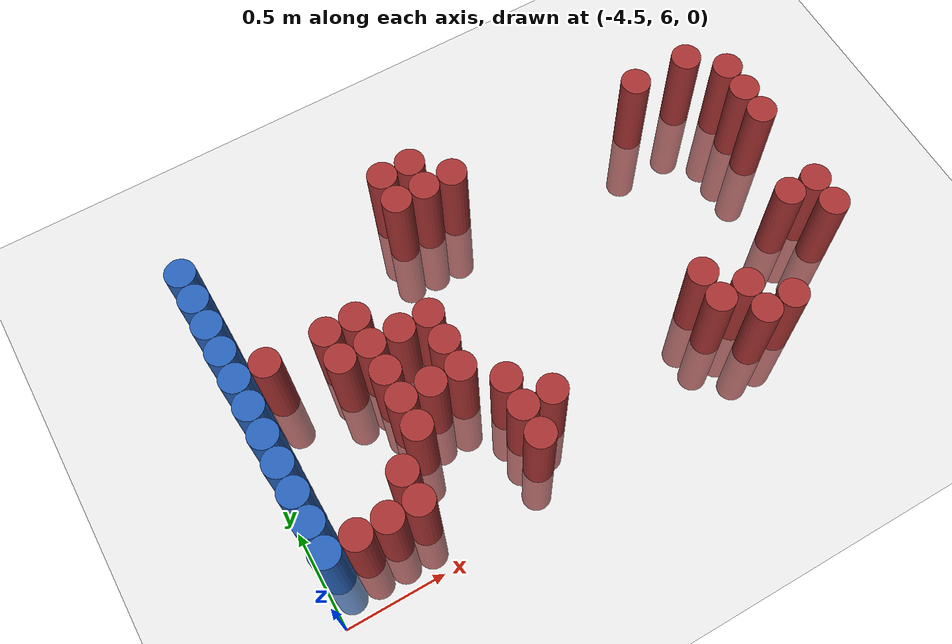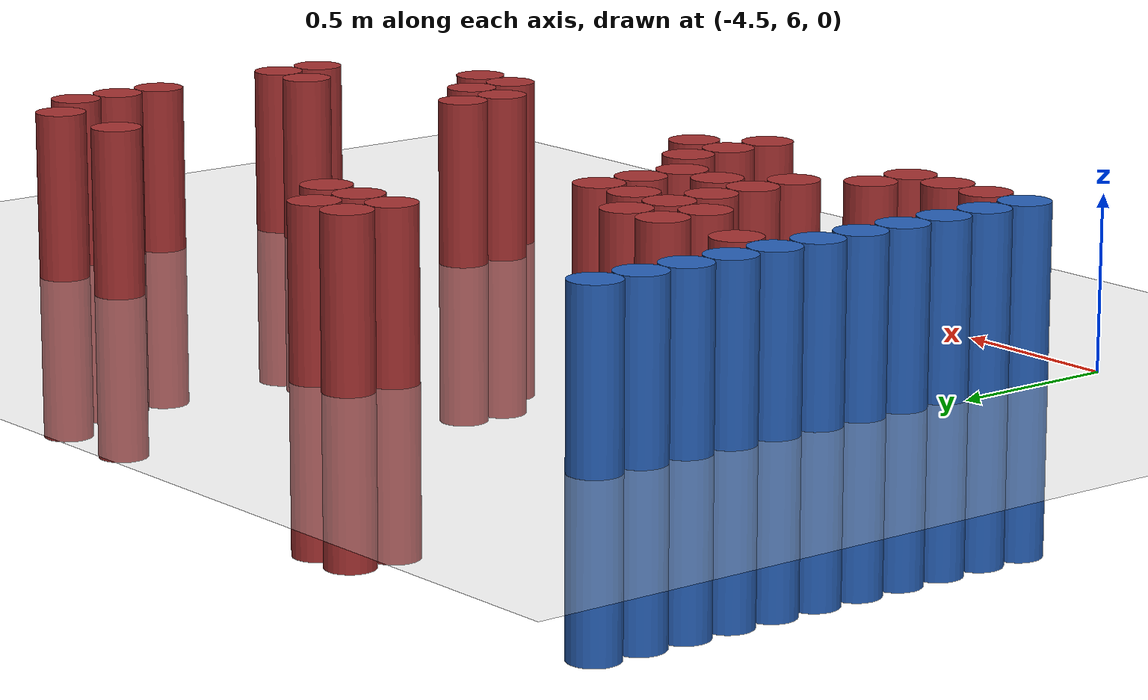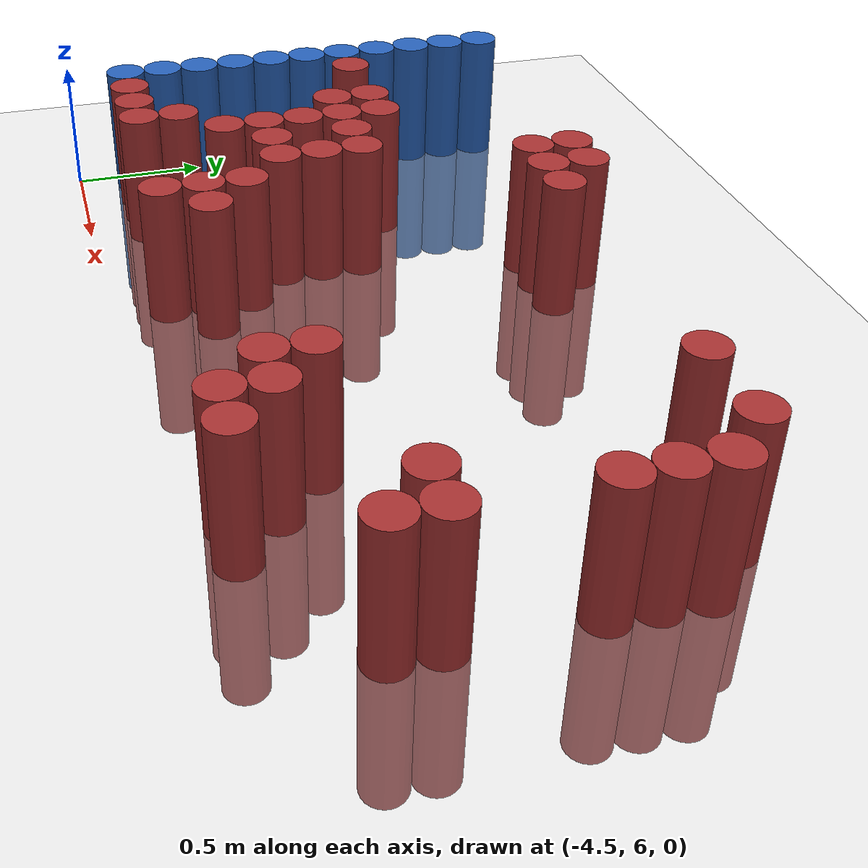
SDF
<sdf version="1.6">
 <world name="default">
  <model name="ground_plane">
   <static>1</static>
   <link name="link">
    <collision name="collision">
     <geometry><plane><normal>0 0 1</normal><size>100 100</size></plane></geometry>
     <surface><friction><ode><mu>100</mu><mu2>50</mu2></ode></friction></surface>
    </collision>
    <visual name="visual">
     <cast_shadows>0</cast_shadows>
     <geometry><plane><normal>0 0 1</normal><size>100 100</size></plane></geometry>
     <material>
      <script><uri>file://media/materials/scripts/gazebo.material</uri><name>Gazebo/Grey</name></script>
     </material>
    </visual>
   </link>
  </model>
  <model name="unit_cylinder_103">
   <static>1</static>
   <pose>-4.425000 6.225000 0.000000 0.000000 0.000000 0.000000</pose>
   <link name="link">
    <inertial>
     <mass>1</mass>
     <inertia><ixx>0.145833</ixx><ixy>0</ixy><ixz>0</ixz><iyy>0.145833</iyy><iyz>0</iyz><izz>0.125</izz></inertia>
    </inertial>
    <collision name="collision">
     <geometry><cylinder><radius>0.075000</radius><length>1</length></cylinder></geometry>
    </collision>
    <visual name="visual">
     <geometry><cylinder><radius>0.075000</radius><length>1</length></cylinder></geometry>
     <material>
      <ambient>0.152000 0.379000 0.720000 1</ambient>
      <diffuse>0.152000 0.379000 0.720000 1</diffuse>
     </material>
     <material>
      <script><name>Gazebo/Grey</name><uri>file://media/materials/scripts/gazebo.material</uri></script>
     </material>
    </visual>
   </link>
  </model>
  <model name="unit_cylinder_104">
   <static>1</static>
   <pose>-4.425000 6.375000 0.000000 0.000000 0.000000 0.000000</pose>
   <link name="link">
    <inertial>
     <mass>1</mass>
     <inertia><ixx>0.145833</ixx><ixy>0</ixy><ixz>0</ixz><iyy>0.145833</iyy><iyz>0</iyz><izz>0.125</izz></inertia>
    </inertial>
    <collision name="collision">
     <geometry><cylinder><radius>0.075000</radius><length>1</length></cylinder></geometry>
    </collision>
    <visual name="visual">
     <geometry><cylinder><radius>0.075000</radius><length>1</length></cylinder></geometry>
     <material>
      <ambient>0.152000 0.379000 0.720000 1</ambient>
      <diffuse>0.152000 0.379000 0.720000 1</diffuse>
     </material>
     <material>
      <script><name>Gazebo/Grey</name><uri>file://media/materials/scripts/gazebo.material</uri></script>
     </material>
    </visual>
   </link>
  </model>
  <model name="unit_cylinder_105">
   <static>1</static>
   <pose>-4.425000 6.525000 0.000000 0.000000 0.000000 0.000000</pose>
   <link name="link">
    <inertial>
     <mass>1</mass>
     <inertia><ixx>0.145833</ixx><ixy>0</ixy><ixz>0</ixz><iyy>0.145833</iyy><iyz>0</iyz><izz>0.125</izz></inertia>
    </inertial>
    <collision name="collision">
     <geometry><cylinder><radius>0.075000</radius><length>1</length></cylinder></geometry>
    </collision>
    <visual name="visual">
     <geometry><cylinder><radius>0.075000</radius><length>1</length></cylinder></geometry>
     <material>
      <ambient>0.152000 0.379000 0.720000 1</ambient>
      <diffuse>0.152000 0.379000 0.720000 1</diffuse>
     </material>
     <material>
      <script><name>Gazebo/Grey</name><uri>file://media/materials/scripts/gazebo.material</uri></script>
     </material>
    </visual>
   </link>
  </model>
  <model name="unit_cylinder_106">
   <static>1</static>
   <pose>-4.425000 6.675000 0.000000 0.000000 0.000000 0.000000</pose>
   <link name="link">
    <inertial>
     <mass>1</mass>
     <inertia><ixx>0.145833</ixx><ixy>0</ixy><ixz>0</ixz><iyy>0.145833</iyy><iyz>0</iyz><izz>0.125</izz></inertia>
    </inertial>
    <collision name="collision">
     <geometry><cylinder><radius>0.075000</radius><length>1</length></cylinder></geometry>
    </collision>
    <visual name="visual">
     <geometry><cylinder><radius>0.075000</radius><length>1</length></cylinder></geometry>
     <material>
      <ambient>0.152000 0.379000 0.720000 1</ambient>
      <diffuse>0.152000 0.379000 0.720000 1</diffuse>
     </material>
     <material>
      <script><name>Gazebo/Grey</name><uri>file://media/materials/scripts/gazebo.material</uri></script>
     </material>
    </visual>
   </link>
  </model>
  <model name="unit_cylinder_107">
   <static>1</static>
   <pose>-4.425000 6.825000 0.000000 0.000000 0.000000 0.000000</pose>
   <link name="link">
    <inertial>
     <mass>1</mass>
     <inertia><ixx>0.145833</ixx><ixy>0</ixy><ixz>0</ixz><iyy>0.145833</iyy><iyz>0</iyz><izz>0.125</izz></inertia>
    </inertial>
    <collision name="collision">
     <geometry><cylinder><radius>0.075000</radius><length>1</length></cylinder></geometry>
    </collision>
    <visual name="visual">
     <geometry><cylinder><radius>0.075000</radius><length>1</length></cylinder></geometry>
     <material>
      <ambient>0.152000 0.379000 0.720000 1</ambient>
      <diffuse>0.152000 0.379000 0.720000 1</diffuse>
     </material>
     <material>
      <script><name>Gazebo/Grey</name><uri>file://media/materials/scripts/gazebo.material</uri></script>
     </material>
    </visual>
   </link>
  </model>
  <model name="unit_cylinder_108">
   <static>1</static>
   <pose>-4.425000 6.975000 0.000000 0.000000 0.000000 0.000000</pose>
   <link name="link">
    <inertial>
     <mass>1</mass>
     <inertia><ixx>0.145833</ixx><ixy>0</ixy><ixz>0</ixz><iyy>0.145833</iyy><iyz>0</iyz><izz>0.125</izz></inertia>
    </inertial>
    <collision name="collision">
     <geometry><cylinder><radius>0.075000</radius><length>1</length></cylinder></geometry>
    </collision>
    <visual name="visual">
     <geometry><cylinder><radius>0.075000</radius><length>1</length></cylinder></geometry>
     <material>
      <ambient>0.152000 0.379000 0.720000 1</ambient>
      <diffuse>0.152000 0.379000 0.720000 1</diffuse>
     </material>
     <material>
      <script><name>Gazebo/Grey</name><uri>file://media/materials/scripts/gazebo.material</uri></script>
     </material>
    </visual>
   </link>
  </model>
  <model name="unit_cylinder_109">
   <static>1</static>
   <pose>-4.425000 7.125000 0.000000 0.000000 0.000000 0.000000</pose>
   <link name="link">
    <inertial>
     <mass>1</mass>
     <inertia><ixx>0.145833</ixx><ixy>0</ixy><ixz>0</ixz><iyy>0.145833</iyy><iyz>0</iyz><izz>0.125</izz></inertia>
    </inertial>
    <collision name="collision">
     <geometry><cylinder><radius>0.075000</radius><length>1</length></cylinder></geometry>
    </collision>
    <visual name="visual">
     <geometry><cylinder><radius>0.075000</radius><length>1</length></cylinder></geometry>
     <material>
      <ambient>0.152000 0.379000 0.720000 1</ambient>
      <diffuse>0.152000 0.379000 0.720000 1</diffuse>
     </material>
     <material>
      <script><name>Gazebo/Grey</name><uri>file://media/materials/scripts/gazebo.material</uri></script>
     </material>
    </visual>
   </link>
  </model>
  <model name="unit_cylinder_110">
   <static>1</static>
   <pose>-4.425000 7.275000 0.000000 0.000000 0.000000 0.000000</pose>
   <link name="link">
    <inertial>
     <mass>1</mass>
     <inertia><ixx>0.145833</ixx><ixy>0</ixy><ixz>0</ixz><iyy>0.145833</iyy><iyz>0</iyz><izz>0.125</izz></inertia>
    </inertial>
    <collision name="collision">
     <geometry><cylinder><radius>0.075000</radius><length>1</length></cylinder></geometry>
    </collision>
    <visual name="visual">
     <geometry><cylinder><radius>0.075000</radius><length>1</length></cylinder></geometry>
     <material>
      <ambient>0.152000 0.379000 0.720000 1</ambient>
      <diffuse>0.152000 0.379000 0.720000 1</diffuse>
     </material>
     <material>
      <script><name>Gazebo/Grey</name><uri>file://media/materials/scripts/gazebo.material</uri></script>
     </material>
    </visual>
   </link>
  </model>
  <model name="unit_cylinder_111">
   <static>1</static>
   <pose>-4.425000 7.425000 0.000000 0.000000 0.000000 0.000000</pose>
   <link name="link">
    <inertial>
     <mass>1</mass>
     <inertia><ixx>0.145833</ixx><ixy>0</ixy><ixz>0</ixz><iyy>0.145833</iyy><iyz>0</iyz><izz>0.125</izz></inertia>
    </inertial>
    <collision name="collision">
     <geometry><cylinder><radius>0.075000</radius><length>1</length></cylinder></geometry>
    </collision>
    <visual name="visual">
     <geometry><cylinder><radius>0.075000</radius><length>1</length></cylinder></geometry>
     <material>
      <ambient>0.152000 0.379000 0.720000 1</ambient>
      <diffuse>0.152000 0.379000 0.720000 1</diffuse>
     </material>
     <material>
      <script><name>Gazebo/Grey</name><uri>file://media/materials/scripts/gazebo.material</uri></script>
     </material>
    </visual>
   </link>
  </model>
  <model name="unit_cylinder_112">
   <static>1</static>
   <pose>-4.425000 7.575000 0.000000 0.000000 0.000000 0.000000</pose>
   <link name="link">
    <inertial>
     <mass>1</mass>
     <inertia><ixx>0.145833</ixx><ixy>0</ixy><ixz>0</ixz><iyy>0.145833</iyy><iyz>0</iyz><izz>0.125</izz></inertia>
    </inertial>
    <collision name="collision">
     <geometry><cylinder><radius>0.075000</radius><length>1</length></cylinder></geometry>
    </collision>
    <visual name="visual">
     <geometry><cylinder><radius>0.075000</radius><length>1</length></cylinder></geometry>
     <material>
      <ambient>0.152000 0.379000 0.720000 1</ambient>
      <diffuse>0.152000 0.379000 0.720000 1</diffuse>
     </material>
     <material>
      <script><name>Gazebo/Grey</name><uri>file://media/materials/scripts/gazebo.material</uri></script>
     </material>
    </visual>
   </link>
  </model>
  <model name="unit_cylinder_113">
   <static>1</static>
   <pose>-4.425000 7.725000 0.000000 0.000000 0.000000 0.000000</pose>
   <link name="link">
    <inertial>
     <mass>1</mass>
     <inertia><ixx>0.145833</ixx><ixy>0</ixy><ixz>0</ixz><iyy>0.145833</iyy><iyz>0</iyz><izz>0.125</izz></inertia>
    </inertial>
    <collision name="collision">
     <geometry><cylinder><radius>0.075000</radius><length>1</length></cylinder></geometry>
    </collision>
    <visual name="visual">
     <geometry><cylinder><radius>0.075000</radius><length>1</length></cylinder></geometry>
     <material>
      <ambient>0.152000 0.379000 0.720000 1</ambient>
      <diffuse>0.152000 0.379000 0.720000 1</diffuse>
     </material>
     <material>
      <script><name>Gazebo/Grey</name><uri>file://media/materials/scripts/gazebo.material</uri></script>
     </material>
    </visual>
   </link>
  </model>
  <model name="unit_cylinder_130">
   <static>1</static>
   <pose>-4.275000 6.225000 0.000000 0.000000 0.000000 0.000000</pose>
   <link name="link">
    <inertial>
     <mass>1</mass>
     <inertia><ixx>0.145833</ixx><ixy>0</ixy><ixz>0</ixz><iyy>0.145833</iyy><iyz>0</iyz><izz>0.125</izz></inertia>
    </inertial>
    <collision name="collision">
     <geometry><cylinder><radius>0.075000</radius><length>1</length></cylinder></geometry>
    </collision>
    <visual name="visual">
     <geometry><cylinder><radius>0.075000</radius><length>1</length></cylinder></geometry>
     <material>
      <ambient>0.648000 0.192000 0.192000 1</ambient>
      <diffuse>0.648000 0.192000 0.192000 1</diffuse>
     </material>
     <material>
      <script><name>Gazebo/Grey</name><uri>file://media/materials/scripts/gazebo.material</uri></script>
     </material>
    </visual>
   </link>
  </model>
  <model name="unit_cylinder_131">
   <static>1</static>
   <pose>-4.275000 7.125000 0.000000 0.000000 0.000000 0.000000</pose>
   <link name="link">
    <inertial>
     <mass>1</mass>
     <inertia><ixx>0.145833</ixx><ixy>0</ixy><ixz>0</ixz><iyy>0.145833</iyy><iyz>0</iyz><izz>0.125</izz></inertia>
    </inertial>
    <collision name="collision">
     <geometry><cylinder><radius>0.075000</radius><length>1</length></cylinder></geometry>
    </collision>
    <visual name="visual">
     <geometry><cylinder><radius>0.075000</radius><length>1</length></cylinder></geometry>
     <material>
      <ambient>0.648000 0.192000 0.192000 1</ambient>
      <diffuse>0.648000 0.192000 0.192000 1</diffuse>
     </material>
     <material>
      <script><name>Gazebo/Grey</name><uri>file://media/materials/scripts/gazebo.material</uri></script>
     </material>
    </visual>
   </link>
  </model>
  <model name="unit_cylinder_140">
   <static>1</static>
   <pose>-4.125000 6.225000 0.000000 0.000000 0.000000 0.000000</pose>
   <link name="link">
    <inertial>
     <mass>1</mass>
     <inertia><ixx>0.145833</ixx><ixy>0</ixy><ixz>0</ixz><iyy>0.145833</iyy><iyz>0</iyz><izz>0.125</izz></inertia>
    </inertial>
    <collision name="collision">
     <geometry><cylinder><radius>0.075000</radius><length>1</length></cylinder></geometry>
    </collision>
    <visual name="visual">
     <geometry><cylinder><radius>0.075000</radius><length>1</length></cylinder></geometry>
     <material>
      <ambient>0.648000 0.192000 0.192000 1</ambient>
      <diffuse>0.648000 0.192000 0.192000 1</diffuse>
     </material>
     <material>
      <script><name>Gazebo/Grey</name><uri>file://media/materials/scripts/gazebo.material</uri></script>
     </material>
    </visual>
   </link>
  </model>
  <model name="unit_cylinder_145">
   <static>1</static>
   <pose>-3.975000 6.225000 0.000000 0.000000 0.000000 0.000000</pose>
   <link name="link">
    <inertial>
     <mass>1</mass>
     <inertia><ixx>0.145833</ixx><ixy>0</ixy><ixz>0</ixz><iyy>0.145833</iyy><iyz>0</iyz><izz>0.125</izz></inertia>
    </inertial>
    <collision name="collision">
     <geometry><cylinder><radius>0.075000</radius><length>1</length></cylinder></geometry>
    </collision>
    <visual name="visual">
     <geometry><cylinder><radius>0.075000</radius><length>1</length></cylinder></geometry>
     <material>
      <ambient>0.648000 0.192000 0.192000 1</ambient>
      <diffuse>0.648000 0.192000 0.192000 1</diffuse>
     </material>
     <material>
      <script><name>Gazebo/Grey</name><uri>file://media/materials/scripts/gazebo.material</uri></script>
     </material>
    </visual>
   </link>
  </model>
  <model name="unit_cylinder_146">
   <static>1</static>
   <pose>-3.975000 6.375000 0.000000 0.000000 0.000000 0.000000</pose>
   <link name="link">
    <inertial>
     <mass>1</mass>
     <inertia><ixx>0.145833</ixx><ixy>0</ixy><ixz>0</ixz><iyy>0.145833</iyy><iyz>0</iyz><izz>0.125</izz></inertia>
    </inertial>
    <collision name="collision">
     <geometry><cylinder><radius>0.075000</radius><length>1</length></cylinder></geometry>
    </collision>
    <visual name="visual">
     <geometry><cylinder><radius>0.075000</radius><length>1</length></cylinder></geometry>
     <material>
      <ambient>0.648000 0.192000 0.192000 1</ambient>
      <diffuse>0.648000 0.192000 0.192000 1</diffuse>
     </material>
     <material>
      <script><name>Gazebo/Grey</name><uri>file://media/materials/scripts/gazebo.material</uri></script>
     </material>
    </visual>
   </link>
  </model>
  <model name="unit_cylinder_147">
   <static>1</static>
   <pose>-3.975000 6.975000 0.000000 0.000000 0.000000 0.000000</pose>
   <link name="link">
    <inertial>
     <mass>1</mass>
     <inertia><ixx>0.145833</ixx><ixy>0</ixy><ixz>0</ixz><iyy>0.145833</iyy><iyz>0</iyz><izz>0.125</izz></inertia>
    </inertial>
    <collision name="collision">
     <geometry><cylinder><radius>0.075000</radius><length>1</length></cylinder></geometry>
    </collision>
    <visual name="visual">
     <geometry><cylinder><radius>0.075000</radius><length>1</length></cylinder></geometry>
     <material>
      <ambient>0.648000 0.192000 0.192000 1</ambient>
      <diffuse>0.648000 0.192000 0.192000 1</diffuse>
     </material>
     <material>
      <script><name>Gazebo/Grey</name><uri>file://media/materials/scripts/gazebo.material</uri></script>
     </material>
    </visual>
   </link>
  </model>
  <model name="unit_cylinder_148">
   <static>1</static>
   <pose>-3.975000 7.125000 0.000000 0.000000 0.000000 0.000000</pose>
   <link name="link">
    <inertial>
     <mass>1</mass>
     <inertia><ixx>0.145833</ixx><ixy>0</ixy><ixz>0</ixz><iyy>0.145833</iyy><iyz>0</iyz><izz>0.125</izz></inertia>
    </inertial>
    <collision name="collision">
     <geometry><cylinder><radius>0.075000</radius><length>1</length></cylinder></geometry>
    </collision>
    <visual name="visual">
     <geometry><cylinder><radius>0.075000</radius><length>1</length></cylinder></geometry>
     <material>
      <ambient>0.648000 0.192000 0.192000 1</ambient>
      <diffuse>0.648000 0.192000 0.192000 1</diffuse>
     </material>
     <material>
      <script><name>Gazebo/Grey</name><uri>file://media/materials/scripts/gazebo.material</uri></script>
     </material>
    </visual>
   </link>
  </model>
  <model name="unit_cylinder_152">
   <static>1</static>
   <pose>-3.825000 6.525000 0.000000 0.000000 0.000000 0.000000</pose>
   <link name="link">
    <inertial>
     <mass>1</mass>
     <inertia><ixx>0.145833</ixx><ixy>0</ixy><ixz>0</ixz><iyy>0.145833</iyy><iyz>0</iyz><izz>0.125</izz></inertia>
    </inertial>
    <collision name="collision">
     <geometry><cylinder><radius>0.075000</radius><length>1</length></cylinder></geometry>
    </collision>
    <visual name="visual">
     <geometry><cylinder><radius>0.075000</radius><length>1</length></cylinder></geometry>
     <material>
      <ambient>0.648000 0.192000 0.192000 1</ambient>
      <diffuse>0.648000 0.192000 0.192000 1</diffuse>
     </material>
     <material>
      <script><name>Gazebo/Grey</name><uri>file://media/materials/scripts/gazebo.material</uri></script>
     </material>
    </visual>
   </link>
  </model>
  <model name="unit_cylinder_153">
   <static>1</static>
   <pose>-3.825000 6.675000 0.000000 0.000000 0.000000 0.000000</pose>
   <link name="link">
    <inertial>
     <mass>1</mass>
     <inertia><ixx>0.145833</ixx><ixy>0</ixy><ixz>0</ixz><iyy>0.145833</iyy><iyz>0</iyz><izz>0.125</izz></inertia>
    </inertial>
    <collision name="collision">
     <geometry><cylinder><radius>0.075000</radius><length>1</length></cylinder></geometry>
    </collision>
    <visual name="visual">
     <geometry><cylinder><radius>0.075000</radius><length>1</length></cylinder></geometry>
     <material>
      <ambient>0.648000 0.192000 0.192000 1</ambient>
      <diffuse>0.648000 0.192000 0.192000 1</diffuse>
     </material>
     <material>
      <script><name>Gazebo/Grey</name><uri>file://media/materials/scripts/gazebo.material</uri></script>
     </material>
    </visual>
   </link>
  </model>
  <model name="unit_cylinder_154">
   <static>1</static>
   <pose>-3.825000 6.825000 0.000000 0.000000 0.000000 0.000000</pose>
   <link name="link">
    <inertial>
     <mass>1</mass>
     <inertia><ixx>0.145833</ixx><ixy>0</ixy><ixz>0</ixz><iyy>0.145833</iyy><iyz>0</iyz><izz>0.125</izz></inertia>
    </inertial>
    <collision name="collision">
     <geometry><cylinder><radius>0.075000</radius><length>1</length></cylinder></geometry>
    </collision>
    <visual name="visual">
     <geometry><cylinder><radius>0.075000</radius><length>1</length></cylinder></geometry>
     <material>
      <ambient>0.648000 0.192000 0.192000 1</ambient>
      <diffuse>0.648000 0.192000 0.192000 1</diffuse>
     </material>
     <material>
      <script><name>Gazebo/Grey</name><uri>file://media/materials/scripts/gazebo.material</uri></script>
     </material>
    </visual>
   </link>
  </model>
  <model name="unit_cylinder_155">
   <static>1</static>
   <pose>-3.825000 6.975000 0.000000 0.000000 0.000000 0.000000</pose>
   <link name="link">
    <inertial>
     <mass>1</mass>
     <inertia><ixx>0.145833</ixx><ixy>0</ixy><ixz>0</ixz><iyy>0.145833</iyy><iyz>0</iyz><izz>0.125</izz></inertia>
    </inertial>
    <collision name="collision">
     <geometry><cylinder><radius>0.075000</radius><length>1</length></cylinder></geometry>
    </collision>
    <visual name="visual">
     <geometry><cylinder><radius>0.075000</radius><length>1</length></cylinder></geometry>
     <material>
      <ambient>0.648000 0.192000 0.192000 1</ambient>
      <diffuse>0.648000 0.192000 0.192000 1</diffuse>
     </material>
     <material>
      <script><name>Gazebo/Grey</name><uri>file://media/materials/scripts/gazebo.material</uri></script>
     </material>
    </visual>
   </link>
  </model>
  <model name="unit_cylinder_156">
   <static>1</static>
   <pose>-3.825000 7.125000 0.000000 0.000000 0.000000 0.000000</pose>
   <link name="link">
    <inertial>
     <mass>1</mass>
     <inertia><ixx>0.145833</ixx><ixy>0</ixy><ixz>0</ixz><iyy>0.145833</iyy><iyz>0</iyz><izz>0.125</izz></inertia>
    </inertial>
    <collision name="collision">
     <geometry><cylinder><radius>0.075000</radius><length>1</length></cylinder></geometry>
    </collision>
    <visual name="visual">
     <geometry><cylinder><radius>0.075000</radius><length>1</length></cylinder></geometry>
     <material>
      <ambient>0.648000 0.192000 0.192000 1</ambient>
      <diffuse>0.648000 0.192000 0.192000 1</diffuse>
     </material>
     <material>
      <script><name>Gazebo/Grey</name><uri>file://media/materials/scripts/gazebo.material</uri></script>
     </material>
    </visual>
   </link>
  </model>
  <model name="unit_cylinder_164">
   <static>1</static>
   <pose>-3.675000 6.675000 0.000000 0.000000 0.000000 0.000000</pose>
   <link name="link">
    <inertial>
     <mass>1</mass>
     <inertia><ixx>0.145833</ixx><ixy>0</ixy><ixz>0</ixz><iyy>0.145833</iyy><iyz>0</iyz><izz>0.125</izz></inertia>
    </inertial>
    <collision name="collision">
     <geometry><cylinder><radius>0.075000</radius><length>1</length></cylinder></geometry>
    </collision>
    <visual name="visual">
     <geometry><cylinder><radius>0.075000</radius><length>1</length></cylinder></geometry>
     <material>
      <ambient>0.648000 0.192000 0.192000 1</ambient>
      <diffuse>0.648000 0.192000 0.192000 1</diffuse>
     </material>
     <material>
      <script><name>Gazebo/Grey</name><uri>file://media/materials/scripts/gazebo.material</uri></script>
     </material>
    </visual>
   </link>
  </model>
  <model name="unit_cylinder_165">
   <static>1</static>
   <pose>-3.675000 6.975000 0.000000 0.000000 0.000000 0.000000</pose>
   <link name="link">
    <inertial>
     <mass>1</mass>
     <inertia><ixx>0.145833</ixx><ixy>0</ixy><ixz>0</ixz><iyy>0.145833</iyy><iyz>0</iyz><izz>0.125</izz></inertia>
    </inertial>
    <collision name="collision">
     <geometry><cylinder><radius>0.075000</radius><length>1</length></cylinder></geometry>
    </collision>
    <visual name="visual">
     <geometry><cylinder><radius>0.075000</radius><length>1</length></cylinder></geometry>
     <material>
      <ambient>0.648000 0.192000 0.192000 1</ambient>
      <diffuse>0.648000 0.192000 0.192000 1</diffuse>
     </material>
     <material>
      <script><name>Gazebo/Grey</name><uri>file://media/materials/scripts/gazebo.material</uri></script>
     </material>
    </visual>
   </link>
  </model>
  <model name="unit_cylinder_171">
   <static>1</static>
   <pose>-3.525000 6.675000 0.000000 0.000000 0.000000 0.000000</pose>
   <link name="link">
    <inertial>
     <mass>1</mass>
     <inertia><ixx>0.145833</ixx><ixy>0</ixy><ixz>0</ixz><iyy>0.145833</iyy><iyz>0</iyz><izz>0.125</izz></inertia>
    </inertial>
    <collision name="collision">
     <geometry><cylinder><radius>0.075000</radius><length>1</length></cylinder></geometry>
    </collision>
    <visual name="visual">
     <geometry><cylinder><radius>0.075000</radius><length>1</length></cylinder></geometry>
     <material>
      <ambient>0.648000 0.192000 0.192000 1</ambient>
      <diffuse>0.648000 0.192000 0.192000 1</diffuse>
     </material>
     <material>
      <script><name>Gazebo/Grey</name><uri>file://media/materials/scripts/gazebo.material</uri></script>
     </material>
    </visual>
   </link>
  </model>
  <model name="unit_cylinder_172">
   <static>1</static>
   <pose>-3.525000 6.825000 0.000000 0.000000 0.000000 0.000000</pose>
   <link name="link">
    <inertial>
     <mass>1</mass>
     <inertia><ixx>0.145833</ixx><ixy>0</ixy><ixz>0</ixz><iyy>0.145833</iyy><iyz>0</iyz><izz>0.125</izz></inertia>
    </inertial>
    <collision name="collision">
     <geometry><cylinder><radius>0.075000</radius><length>1</length></cylinder></geometry>
    </collision>
    <visual name="visual">
     <geometry><cylinder><radius>0.075000</radius><length>1</length></cylinder></geometry>
     <material>
      <ambient>0.648000 0.192000 0.192000 1</ambient>
      <diffuse>0.648000 0.192000 0.192000 1</diffuse>
     </material>
     <material>
      <script><name>Gazebo/Grey</name><uri>file://media/materials/scripts/gazebo.material</uri></script>
     </material>
    </visual>
   </link>
  </model>
  <model name="unit_cylinder_173">
   <static>1</static>
   <pose>-3.525000 6.975000 0.000000 0.000000 0.000000 0.000000</pose>
   <link name="link">
    <inertial>
     <mass>1</mass>
     <inertia><ixx>0.145833</ixx><ixy>0</ixy><ixz>0</ixz><iyy>0.145833</iyy><iyz>0</iyz><izz>0.125</izz></inertia>
    </inertial>
    <collision name="collision">
     <geometry><cylinder><radius>0.075000</radius><length>1</length></cylinder></geometry>
    </collision>
    <visual name="visual">
     <geometry><cylinder><radius>0.075000</radius><length>1</length></cylinder></geometry>
     <material>
      <ambient>0.648000 0.192000 0.192000 1</ambient>
      <diffuse>0.648000 0.192000 0.192000 1</diffuse>
     </material>
     <material>
      <script><name>Gazebo/Grey</name><uri>file://media/materials/scripts/gazebo.material</uri></script>
     </material>
    </visual>
   </link>
  </model>
  <model name="unit_cylinder_179">
   <static>1</static>
   <pose>-3.375000 6.225000 0.000000 0.000000 0.000000 0.000000</pose>
   <link name="link">
    <inertial>
     <mass>1</mass>
     <inertia><ixx>0.145833</ixx><ixy>0</ixy><ixz>0</ixz><iyy>0.145833</iyy><iyz>0</iyz><izz>0.125</izz></inertia>
    </inertial>
    <collision name="collision">
     <geometry><cylinder><radius>0.075000</radius><length>1</length></cylinder></geometry>
    </collision>
    <visual name="visual">
     <geometry><cylinder><radius>0.075000</radius><length>1</length></cylinder></geometry>
     <material>
      <ambient>0.648000 0.192000 0.192000 1</ambient>
      <diffuse>0.648000 0.192000 0.192000 1</diffuse>
     </material>
     <material>
      <script><name>Gazebo/Grey</name><uri>file://media/materials/scripts/gazebo.material</uri></script>
     </material>
    </visual>
   </link>
  </model>
  <model name="unit_cylinder_180">
   <static>1</static>
   <pose>-3.375000 6.375000 0.000000 0.000000 0.000000 0.000000</pose>
   <link name="link">
    <inertial>
     <mass>1</mass>
     <inertia><ixx>0.145833</ixx><ixy>0</ixy><ixz>0</ixz><iyy>0.145833</iyy><iyz>0</iyz><izz>0.125</izz></inertia>
    </inertial>
    <collision name="collision">
     <geometry><cylinder><radius>0.075000</radius><length>1</length></cylinder></geometry>
    </collision>
    <visual name="visual">
     <geometry><cylinder><radius>0.075000</radius><length>1</length></cylinder></geometry>
     <material>
      <ambient>0.648000 0.192000 0.192000 1</ambient>
      <diffuse>0.648000 0.192000 0.192000 1</diffuse>
     </material>
     <material>
      <script><name>Gazebo/Grey</name><uri>file://media/materials/scripts/gazebo.material</uri></script>
     </material>
    </visual>
   </link>
  </model>
  <model name="unit_cylinder_181">
   <static>1</static>
   <pose>-3.375000 6.525000 0.000000 0.000000 0.000000 0.000000</pose>
   <link name="link">
    <inertial>
     <mass>1</mass>
     <inertia><ixx>0.145833</ixx><ixy>0</ixy><ixz>0</ixz><iyy>0.145833</iyy><iyz>0</iyz><izz>0.125</izz></inertia>
    </inertial>
    <collision name="collision">
     <geometry><cylinder><radius>0.075000</radius><length>1</length></cylinder></geometry>
    </collision>
    <visual name="visual">
     <geometry><cylinder><radius>0.075000</radius><length>1</length></cylinder></geometry>
     <material>
      <ambient>0.648000 0.192000 0.192000 1</ambient>
      <diffuse>0.648000 0.192000 0.192000 1</diffuse>
     </material>
     <material>
      <script><name>Gazebo/Grey</name><uri>file://media/materials/scripts/gazebo.material</uri></script>
     </material>
    </visual>
   </link>
  </model>
  <model name="unit_cylinder_182">
   <static>1</static>
   <pose>-3.375000 7.575000 0.000000 0.000000 0.000000 0.000000</pose>
   <link name="link">
    <inertial>
     <mass>1</mass>
     <inertia><ixx>0.145833</ixx><ixy>0</ixy><ixz>0</ixz><iyy>0.145833</iyy><iyz>0</iyz><izz>0.125</izz></inertia>
    </inertial>
    <collision name="collision">
     <geometry><cylinder><radius>0.075000</radius><length>1</length></cylinder></geometry>
    </collision>
    <visual name="visual">
     <geometry><cylinder><radius>0.075000</radius><length>1</length></cylinder></geometry>
     <material>
      <ambient>0.648000 0.192000 0.192000 1</ambient>
      <diffuse>0.648000 0.192000 0.192000 1</diffuse>
     </material>
     <material>
      <script><name>Gazebo/Grey</name><uri>file://media/materials/scripts/gazebo.material</uri></script>
     </material>
    </visual>
   </link>
  </model>
  <model name="unit_cylinder_183">
   <static>1</static>
   <pose>-3.375000 7.725000 0.000000 0.000000 0.000000 0.000000</pose>
   <link name="link">
    <inertial>
     <mass>1</mass>
     <inertia><ixx>0.145833</ixx><ixy>0</ixy><ixz>0</ixz><iyy>0.145833</iyy><iyz>0</iyz><izz>0.125</izz></inertia>
    </inertial>
    <collision name="collision">
     <geometry><cylinder><radius>0.075000</radius><length>1</length></cylinder></geometry>
    </collision>
    <visual name="visual">
     <geometry><cylinder><radius>0.075000</radius><length>1</length></cylinder></geometry>
     <material>
      <ambient>0.648000 0.192000 0.192000 1</ambient>
      <diffuse>0.648000 0.192000 0.192000 1</diffuse>
     </material>
     <material>
      <script><name>Gazebo/Grey</name><uri>file://media/materials/scripts/gazebo.material</uri></script>
     </material>
    </visual>
   </link>
  </model>
  <model name="unit_cylinder_187">
   <static>1</static>
   <pose>-3.225000 6.375000 0.000000 0.000000 0.000000 0.000000</pose>
   <link name="link">
    <inertial>
     <mass>1</mass>
     <inertia><ixx>0.145833</ixx><ixy>0</ixy><ixz>0</ixz><iyy>0.145833</iyy><iyz>0</iyz><izz>0.125</izz></inertia>
    </inertial>
    <collision name="collision">
     <geometry><cylinder><radius>0.075000</radius><length>1</length></cylinder></geometry>
    </collision>
    <visual name="visual">
     <geometry><cylinder><radius>0.075000</radius><length>1</length></cylinder></geometry>
     <material>
      <ambient>0.648000 0.192000 0.192000 1</ambient>
      <diffuse>0.648000 0.192000 0.192000 1</diffuse>
     </material>
     <material>
      <script><name>Gazebo/Grey</name><uri>file://media/materials/scripts/gazebo.material</uri></script>
     </material>
    </visual>
   </link>
  </model>
  <model name="unit_cylinder_188">
   <static>1</static>
   <pose>-3.225000 7.575000 0.000000 0.000000 0.000000 0.000000</pose>
   <link name="link">
    <inertial>
     <mass>1</mass>
     <inertia><ixx>0.145833</ixx><ixy>0</ixy><ixz>0</ixz><iyy>0.145833</iyy><iyz>0</iyz><izz>0.125</izz></inertia>
    </inertial>
    <collision name="collision">
     <geometry><cylinder><radius>0.075000</radius><length>1</length></cylinder></geometry>
    </collision>
    <visual name="visual">
     <geometry><cylinder><radius>0.075000</radius><length>1</length></cylinder></geometry>
     <material>
      <ambient>0.648000 0.192000 0.192000 1</ambient>
      <diffuse>0.648000 0.192000 0.192000 1</diffuse>
     </material>
     <material>
      <script><name>Gazebo/Grey</name><uri>file://media/materials/scripts/gazebo.material</uri></script>
     </material>
    </visual>
   </link>
  </model>
  <model name="unit_cylinder_189">
   <static>1</static>
   <pose>-3.225000 7.725000 0.000000 0.000000 0.000000 0.000000</pose>
   <link name="link">
    <inertial>
     <mass>1</mass>
     <inertia><ixx>0.145833</ixx><ixy>0</ixy><ixz>0</ixz><iyy>0.145833</iyy><iyz>0</iyz><izz>0.125</izz></inertia>
    </inertial>
    <collision name="collision">
     <geometry><cylinder><radius>0.075000</radius><length>1</length></cylinder></geometry>
    </collision>
    <visual name="visual">
     <geometry><cylinder><radius>0.075000</radius><length>1</length></cylinder></geometry>
     <material>
      <ambient>0.648000 0.192000 0.192000 1</ambient>
      <diffuse>0.648000 0.192000 0.192000 1</diffuse>
     </material>
     <material>
      <script><name>Gazebo/Grey</name><uri>file://media/materials/scripts/gazebo.material</uri></script>
     </material>
    </visual>
   </link>
  </model>
  <model name="unit_cylinder_194">
   <static>1</static>
   <pose>-3.075000 7.575000 0.000000 0.000000 0.000000 0.000000</pose>
   <link name="link">
    <inertial>
     <mass>1</mass>
     <inertia><ixx>0.145833</ixx><ixy>0</ixy><ixz>0</ixz><iyy>0.145833</iyy><iyz>0</iyz><izz>0.125</izz></inertia>
    </inertial>
    <collision name="collision">
     <geometry><cylinder><radius>0.075000</radius><length>1</length></cylinder></geometry>
    </collision>
    <visual name="visual">
     <geometry><cylinder><radius>0.075000</radius><length>1</length></cylinder></geometry>
     <material>
      <ambient>0.648000 0.192000 0.192000 1</ambient>
      <diffuse>0.648000 0.192000 0.192000 1</diffuse>
     </material>
     <material>
      <script><name>Gazebo/Grey</name><uri>file://media/materials/scripts/gazebo.material</uri></script>
     </material>
    </visual>
   </link>
  </model>
  <model name="unit_cylinder_204">
   <static>1</static>
   <pose>-2.325000 6.375000 0.000000 0.000000 0.000000 0.000000</pose>
   <link name="link">
    <inertial>
     <mass>1</mass>
     <inertia><ixx>0.145833</ixx><ixy>0</ixy><ixz>0</ixz><iyy>0.145833</iyy><iyz>0</iyz><izz>0.125</izz></inertia>
    </inertial>
    <collision name="collision">
     <geometry><cylinder><radius>0.075000</radius><length>1</length></cylinder></geometry>
    </collision>
    <visual name="visual">
     <geometry><cylinder><radius>0.075000</radius><length>1</length></cylinder></geometry>
     <material>
      <ambient>0.648000 0.192000 0.192000 1</ambient>
      <diffuse>0.648000 0.192000 0.192000 1</diffuse>
     </material>
     <material>
      <script><name>Gazebo/Grey</name><uri>file://media/materials/scripts/gazebo.material</uri></script>
     </material>
    </visual>
   </link>
  </model>
  <model name="unit_cylinder_205">
   <static>1</static>
   <pose>-2.325000 6.525000 0.000000 0.000000 0.000000 0.000000</pose>
   <link name="link">
    <inertial>
     <mass>1</mass>
     <inertia><ixx>0.145833</ixx><ixy>0</ixy><ixz>0</ixz><iyy>0.145833</iyy><iyz>0</iyz><izz>0.125</izz></inertia>
    </inertial>
    <collision name="collision">
     <geometry><cylinder><radius>0.075000</radius><length>1</length></cylinder></geometry>
    </collision>
    <visual name="visual">
     <geometry><cylinder><radius>0.075000</radius><length>1</length></cylinder></geometry>
     <material>
      <ambient>0.648000 0.192000 0.192000 1</ambient>
      <diffuse>0.648000 0.192000 0.192000 1</diffuse>
     </material>
     <material>
      <script><name>Gazebo/Grey</name><uri>file://media/materials/scripts/gazebo.material</uri></script>
     </material>
    </visual>
   </link>
  </model>
  <model name="unit_cylinder_207">
   <static>1</static>
   <pose>-2.175000 6.225000 0.000000 0.000000 0.000000 0.000000</pose>
   <link name="link">
    <inertial>
     <mass>1</mass>
     <inertia><ixx>0.145833</ixx><ixy>0</ixy><ixz>0</ixz><iyy>0.145833</iyy><iyz>0</iyz><izz>0.125</izz></inertia>
    </inertial>
    <collision name="collision">
     <geometry><cylinder><radius>0.075000</radius><length>1</length></cylinder></geometry>
    </collision>
    <visual name="visual">
     <geometry><cylinder><radius>0.075000</radius><length>1</length></cylinder></geometry>
     <material>
      <ambient>0.648000 0.192000 0.192000 1</ambient>
      <diffuse>0.648000 0.192000 0.192000 1</diffuse>
     </material>
     <material>
      <script><name>Gazebo/Grey</name><uri>file://media/materials/scripts/gazebo.material</uri></script>
     </material>
    </visual>
   </link>
  </model>
  <model name="unit_cylinder_208">
   <static>1</static>
   <pose>-2.175000 6.375000 0.000000 0.000000 0.000000 0.000000</pose>
   <link name="link">
    <inertial>
     <mass>1</mass>
     <inertia><ixx>0.145833</ixx><ixy>0</ixy><ixz>0</ixz><iyy>0.145833</iyy><iyz>0</iyz><izz>0.125</izz></inertia>
    </inertial>
    <collision name="collision">
     <geometry><cylinder><radius>0.075000</radius><length>1</length></cylinder></geometry>
    </collision>
    <visual name="visual">
     <geometry><cylinder><radius>0.075000</radius><length>1</length></cylinder></geometry>
     <material>
      <ambient>0.648000 0.192000 0.192000 1</ambient>
      <diffuse>0.648000 0.192000 0.192000 1</diffuse>
     </material>
     <material>
      <script><name>Gazebo/Grey</name><uri>file://media/materials/scripts/gazebo.material</uri></script>
     </material>
    </visual>
   </link>
  </model>
  <model name="unit_cylinder_210">
   <static>1</static>
   <pose>-2.025000 6.225000 0.000000 0.000000 0.000000 0.000000</pose>
   <link name="link">
    <inertial>
     <mass>1</mass>
     <inertia><ixx>0.145833</ixx><ixy>0</ixy><ixz>0</ixz><iyy>0.145833</iyy><iyz>0</iyz><izz>0.125</izz></inertia>
    </inertial>
    <collision name="collision">
     <geometry><cylinder><radius>0.075000</radius><length>1</length></cylinder></geometry>
    </collision>
    <visual name="visual">
     <geometry><cylinder><radius>0.075000</radius><length>1</length></cylinder></geometry>
     <material>
      <ambient>0.648000 0.192000 0.192000 1</ambient>
      <diffuse>0.648000 0.192000 0.192000 1</diffuse>
     </material>
     <material>
      <script><name>Gazebo/Grey</name><uri>file://media/materials/scripts/gazebo.material</uri></script>
     </material>
    </visual>
   </link>
  </model>
  <model name="unit_cylinder_211">
   <static>1</static>
   <pose>-2.025000 7.575000 0.000000 0.000000 0.000000 0.000000</pose>
   <link name="link">
    <inertial>
     <mass>1</mass>
     <inertia><ixx>0.145833</ixx><ixy>0</ixy><ixz>0</ixz><iyy>0.145833</iyy><iyz>0</iyz><izz>0.125</izz></inertia>
    </inertial>
    <collision name="collision">
     <geometry><cylinder><radius>0.075000</radius><length>1</length></cylinder></geometry>
    </collision>
    <visual name="visual">
     <geometry><cylinder><radius>0.075000</radius><length>1</length></cylinder></geometry>
     <material>
      <ambient>0.648000 0.192000 0.192000 1</ambient>
      <diffuse>0.648000 0.192000 0.192000 1</diffuse>
     </material>
     <material>
      <script><name>Gazebo/Grey</name><uri>file://media/materials/scripts/gazebo.material</uri></script>
     </material>
    </visual>
   </link>
  </model>
  <model name="unit_cylinder_216">
   <static>1</static>
   <pose>-1.725000 6.675000 0.000000 0.000000 0.000000 0.000000</pose>
   <link name="link">
    <inertial>
     <mass>1</mass>
     <inertia><ixx>0.145833</ixx><ixy>0</ixy><ixz>0</ixz><iyy>0.145833</iyy><iyz>0</iyz><izz>0.125</izz></inertia>
    </inertial>
    <collision name="collision">
     <geometry><cylinder><radius>0.075000</radius><length>1</length></cylinder></geometry>
    </collision>
    <visual name="visual">
     <geometry><cylinder><radius>0.075000</radius><length>1</length></cylinder></geometry>
     <material>
      <ambient>0.648000 0.192000 0.192000 1</ambient>
      <diffuse>0.648000 0.192000 0.192000 1</diffuse>
     </material>
     <material>
      <script><name>Gazebo/Grey</name><uri>file://media/materials/scripts/gazebo.material</uri></script>
     </material>
    </visual>
   </link>
  </model>
  <model name="unit_cylinder_217">
   <static>1</static>
   <pose>-1.725000 7.575000 0.000000 0.000000 0.000000 0.000000</pose>
   <link name="link">
    <inertial>
     <mass>1</mass>
     <inertia><ixx>0.145833</ixx><ixy>0</ixy><ixz>0</ixz><iyy>0.145833</iyy><iyz>0</iyz><izz>0.125</izz></inertia>
    </inertial>
    <collision name="collision">
     <geometry><cylinder><radius>0.075000</radius><length>1</length></cylinder></geometry>
    </collision>
    <visual name="visual">
     <geometry><cylinder><radius>0.075000</radius><length>1</length></cylinder></geometry>
     <material>
      <ambient>0.648000 0.192000 0.192000 1</ambient>
      <diffuse>0.648000 0.192000 0.192000 1</diffuse>
     </material>
     <material>
      <script><name>Gazebo/Grey</name><uri>file://media/materials/scripts/gazebo.material</uri></script>
     </material>
    </visual>
   </link>
  </model>
  <model name="unit_cylinder_221">
   <static>1</static>
   <pose>-1.575000 6.525000 0.000000 0.000000 0.000000 0.000000</pose>
   <link name="link">
    <inertial>
     <mass>1</mass>
     <inertia><ixx>0.145833</ixx><ixy>0</ixy><ixz>0</ixz><iyy>0.145833</iyy><iyz>0</iyz><izz>0.125</izz></inertia>
    </inertial>
    <collision name="collision">
     <geometry><cylinder><radius>0.075000</radius><length>1</length></cylinder></geometry>
    </collision>
    <visual name="visual">
     <geometry><cylinder><radius>0.075000</radius><length>1</length></cylinder></geometry>
     <material>
      <ambient>0.648000 0.192000 0.192000 1</ambient>
      <diffuse>0.648000 0.192000 0.192000 1</diffuse>
     </material>
     <material>
      <script><name>Gazebo/Grey</name><uri>file://media/materials/scripts/gazebo.material</uri></script>
     </material>
    </visual>
   </link>
  </model>
  <model name="unit_cylinder_222">
   <static>1</static>
   <pose>-1.575000 6.675000 0.000000 0.000000 0.000000 0.000000</pose>
   <link name="link">
    <inertial>
     <mass>1</mass>
     <inertia><ixx>0.145833</ixx><ixy>0</ixy><ixz>0</ixz><iyy>0.145833</iyy><iyz>0</iyz><izz>0.125</izz></inertia>
    </inertial>
    <collision name="collision">
     <geometry><cylinder><radius>0.075000</radius><length>1</length></cylinder></geometry>
    </collision>
    <visual name="visual">
     <geometry><cylinder><radius>0.075000</radius><length>1</length></cylinder></geometry>
     <material>
      <ambient>0.648000 0.192000 0.192000 1</ambient>
      <diffuse>0.648000 0.192000 0.192000 1</diffuse>
     </material>
     <material>
      <script><name>Gazebo/Grey</name><uri>file://media/materials/scripts/gazebo.material</uri></script>
     </material>
    </visual>
   </link>
  </model>
  <model name="unit_cylinder_223">
   <static>1</static>
   <pose>-1.575000 7.125000 0.000000 0.000000 0.000000 0.000000</pose>
   <link name="link">
    <inertial>
     <mass>1</mass>
     <inertia><ixx>0.145833</ixx><ixy>0</ixy><ixz>0</ixz><iyy>0.145833</iyy><iyz>0</iyz><izz>0.125</izz></inertia>
    </inertial>
    <collision name="collision">
     <geometry><cylinder><radius>0.075000</radius><length>1</length></cylinder></geometry>
    </collision>
    <visual name="visual">
     <geometry><cylinder><radius>0.075000</radius><length>1</length></cylinder></geometry>
     <material>
      <ambient>0.648000 0.192000 0.192000 1</ambient>
      <diffuse>0.648000 0.192000 0.192000 1</diffuse>
     </material>
     <material>
      <script><name>Gazebo/Grey</name><uri>file://media/materials/scripts/gazebo.material</uri></script>
     </material>
    </visual>
   </link>
  </model>
  <model name="unit_cylinder_224">
   <static>1</static>
   <pose>-1.575000 7.275000 0.000000 0.000000 0.000000 0.000000</pose>
   <link name="link">
    <inertial>
     <mass>1</mass>
     <inertia><ixx>0.145833</ixx><ixy>0</ixy><ixz>0</ixz><iyy>0.145833</iyy><iyz>0</iyz><izz>0.125</izz></inertia>
    </inertial>
    <collision name="collision">
     <geometry><cylinder><radius>0.075000</radius><length>1</length></cylinder></geometry>
    </collision>
    <visual name="visual">
     <geometry><cylinder><radius>0.075000</radius><length>1</length></cylinder></geometry>
     <material>
      <ambient>0.648000 0.192000 0.192000 1</ambient>
      <diffuse>0.648000 0.192000 0.192000 1</diffuse>
     </material>
     <material>
      <script><name>Gazebo/Grey</name><uri>file://media/materials/scripts/gazebo.material</uri></script>
     </material>
    </visual>
   </link>
  </model>
  <model name="unit_cylinder_225">
   <static>1</static>
   <pose>-1.575000 7.425000 0.000000 0.000000 0.000000 0.000000</pose>
   <link name="link">
    <inertial>
     <mass>1</mass>
     <inertia><ixx>0.145833</ixx><ixy>0</ixy><ixz>0</ixz><iyy>0.145833</iyy><iyz>0</iyz><izz>0.125</izz></inertia>
    </inertial>
    <collision name="collision">
     <geometry><cylinder><radius>0.075000</radius><length>1</length></cylinder></geometry>
    </collision>
    <visual name="visual">
     <geometry><cylinder><radius>0.075000</radius><length>1</length></cylinder></geometry>
     <material>
      <ambient>0.648000 0.192000 0.192000 1</ambient>
      <diffuse>0.648000 0.192000 0.192000 1</diffuse>
     </material>
     <material>
      <script><name>Gazebo/Grey</name><uri>file://media/materials/scripts/gazebo.material</uri></script>
     </material>
    </visual>
   </link>
  </model>
 </world>
</sdf>
